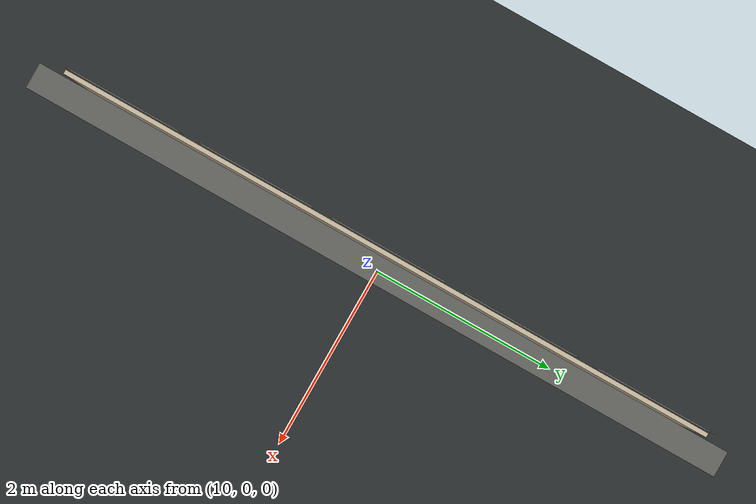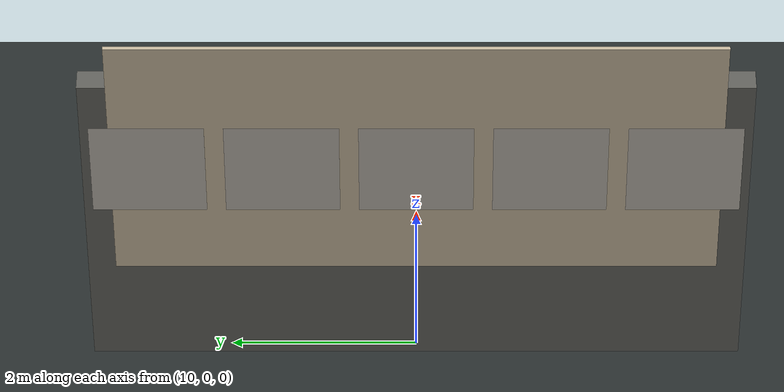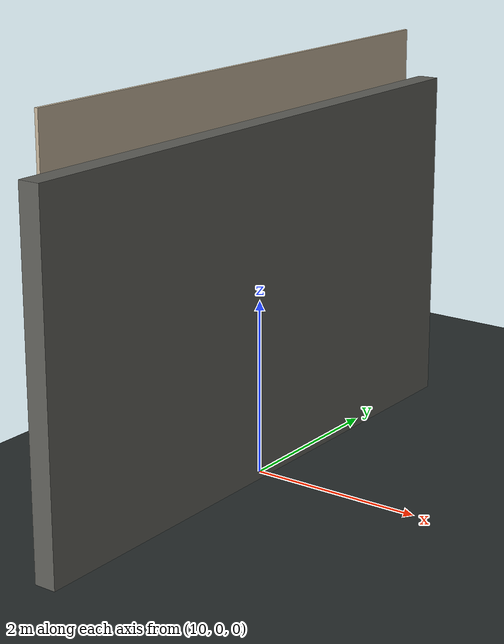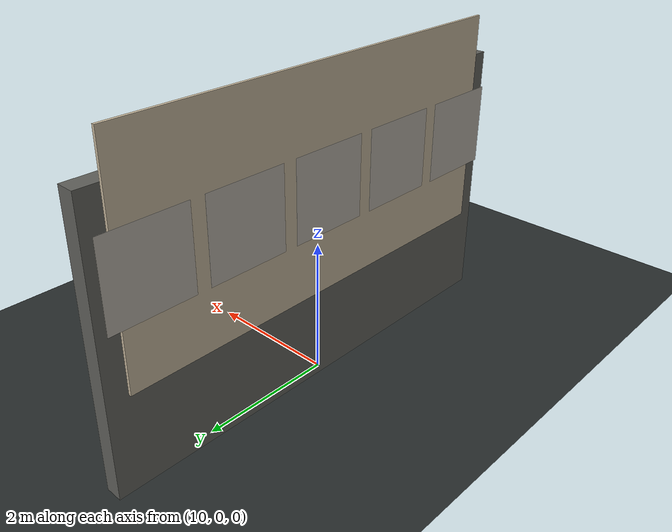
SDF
<sdf version="1.9">
 <world name="aeroinspect_inspection">
  <physics name="1ms" type="ignored">
   <max_step_size>0.001</max_step_size>
   <real_time_factor>1.0</real_time_factor>
  </physics>
  <plugin filename="gz-sim-physics-system" name="gz::sim::systems::Physics"/>
  <plugin filename="gz-sim-sensors-system" name="gz::sim::systems::Sensors">
   <render_engine>ogre2</render_engine>
  </plugin>
  <plugin filename="gz-sim-user-commands-system" name="gz::sim::systems::UserCommands"/>
  <plugin filename="gz-sim-scene-broadcaster-system" name="gz::sim::systems::SceneBroadcaster"/>
  <plugin filename="gz-sim-imu-system" name="gz::sim::systems::Imu"/>
  <plugin filename="gz-sim-navsat-system" name="gz::sim::systems::NavSat"/>
  <scene><ambient>1 1 1 1</ambient><background>0.20 0.24 0.25 1</background></scene>
  <spherical_coordinates>
   <latitude_deg>-35.363262</latitude_deg>
   <longitude_deg>149.165237</longitude_deg>
   <elevation>584</elevation>
   <heading_deg>0</heading_deg>
   <surface_model>EARTH_WGS84</surface_model>
  </spherical_coordinates>
  <light type="directional" name="sun">
   <pose>0 0 10 0 0 0</pose>
   <intensity>1.0</intensity>
   <direction>-0.5 0.1 -0.9</direction>
  </light>
  <model name="ground">
   <static>true</static>
   <link name="link">
    <collision name="collision">
     <geometry><plane><normal>0 0 1</normal><size>100 100</size></plane></geometry>
    </collision>
    <visual name="visual">
     <geometry><plane><normal>0 0 1</normal><size>100 100</size></plane></geometry>
     <material><diffuse>0.16 0.18 0.18 1</diffuse></material>
    </visual>
   </link>
  </model>
  <include><uri>model://inspection_wall</uri></include>
 </world>
</sdf>

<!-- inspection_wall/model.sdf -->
<sdf version="1.9">
  <model name="inspection_wall">
    <static>true</static>
    <!-- Wall centre is 10 m ahead of the home position and 2 m above ground;
         ArduPilot SITL reports the 3 m inspection flight at Gazebo Z≈3 m. -->
    <pose>10 0 2 0 0 0</pose>
    <link name="wall_link">
      <collision name="wall_collision"><geometry><box><size>0.25 7 4</size></box></geometry></collision>
      <visual name="concrete_backing">
        <geometry><box><size>0.25 7 4</size></box></geometry>
        <material><diffuse>0.38 0.38 0.36 1</diffuse><specular>0.05 0.05 0.05 1</specular></material>
      </visual>
      <!-- Blank physical backing wall. The smaller front-mounted planes below
           are the only crack-photo materials visible to the camera. -->
      <visual name="inspection_facade">
        <pose>-0.16 0 1.0 0 0 0</pose>
        <geometry><box><size>0.04 6.4 3.2</size></box></geometry>
        <material><ambient>0.78 0.72 0.62 1</ambient><diffuse>0.78 0.72 0.62 1</diffuse><emissive>0.30 0.26 0.20 1</emissive><specular>0.02 0.02 0.02 1</specular></material>
      </visual>
      <visual name="panel_01"><pose>-0.215 -2.8 0.9 0 -1.5708 0</pose><geometry><plane><size>1.2 1.2</size></plane></geometry><cast_shadows>false</cast_shadows><material><ambient>0.72 0.70 0.66 1</ambient><diffuse>0.72 0.70 0.66 1</diffuse><pbr><metal><albedo_map>model://inspection_wall/materials/textures/panel_01.jpg</albedo_map><roughness>0.92</roughness><metalness>0.0</metalness></metal></pbr></material></visual>
      <visual name="panel_02"><pose>-0.215 -1.4 0.9 0 -1.5708 0</pose><geometry><plane><size>1.2 1.2</size></plane></geometry><cast_shadows>false</cast_shadows><material><ambient>0.72 0.70 0.66 1</ambient><diffuse>0.72 0.70 0.66 1</diffuse><pbr><metal><albedo_map>model://inspection_wall/materials/textures/panel_02.jpg</albedo_map><roughness>0.92</roughness><metalness>0.0</metalness></metal></pbr></material></visual>
      <visual name="panel_03"><pose>-0.215 0 0.9 0 -1.5708 0</pose><geometry><plane><size>1.2 1.2</size></plane></geometry><cast_shadows>false</cast_shadows><material><ambient>0.72 0.70 0.66 1</ambient><diffuse>0.72 0.70 0.66 1</diffuse><pbr><metal><albedo_map>model://inspection_wall/materials/textures/panel_03.jpg</albedo_map><roughness>0.92</roughness><metalness>0.0</metalness></metal></pbr></material></visual>
      <visual name="panel_04"><pose>-0.215 1.4 0.9 0 -1.5708 0</pose><geometry><plane><size>1.2 1.2</size></plane></geometry><cast_shadows>false</cast_shadows><material><ambient>0.72 0.70 0.66 1</ambient><diffuse>0.72 0.70 0.66 1</diffuse><pbr><metal><albedo_map>model://inspection_wall/materials/textures/panel_04.jpg</albedo_map><roughness>0.92</roughness><metalness>0.0</metalness></metal></pbr></material></visual>
      <visual name="panel_05"><pose>-0.215 2.8 0.9 0 -1.5708 0</pose><geometry><plane><size>1.2 1.2</size></plane></geometry><cast_shadows>false</cast_shadows><material><ambient>0.72 0.70 0.66 1</ambient><diffuse>0.72 0.70 0.66 1</diffuse><pbr><metal><albedo_map>model://inspection_wall/materials/textures/panel_05.jpg</albedo_map><roughness>0.92</roughness><metalness>0.0</metalness></metal></pbr></material></visual>
    </link>
  </model>
</sdf>
